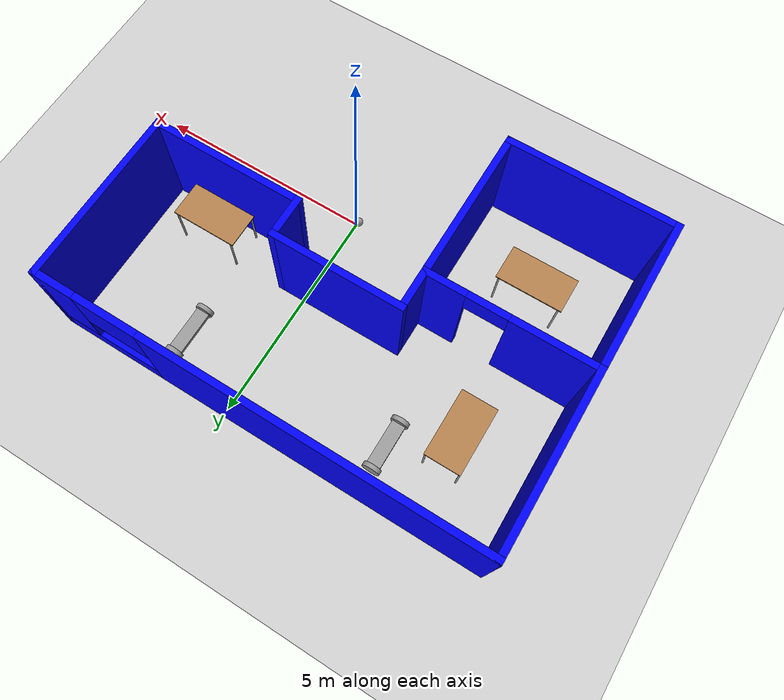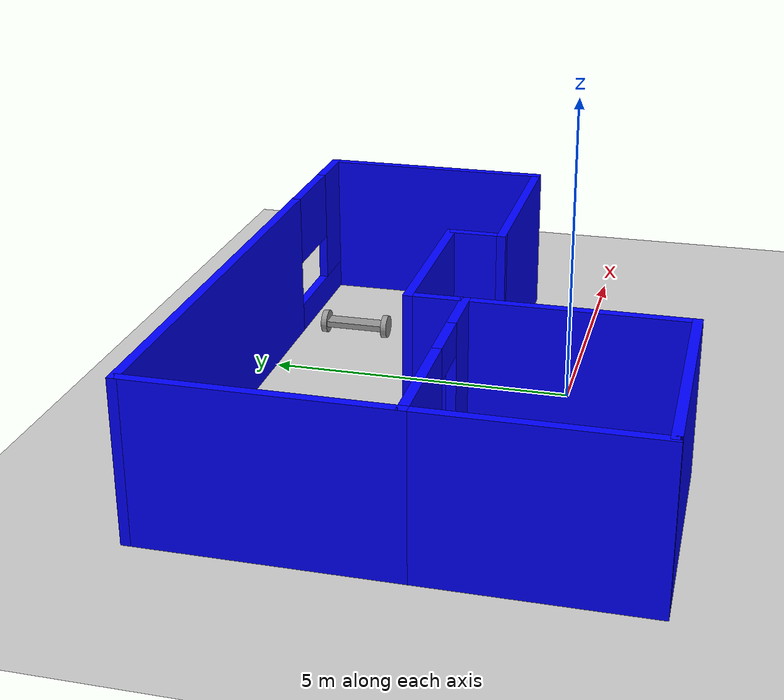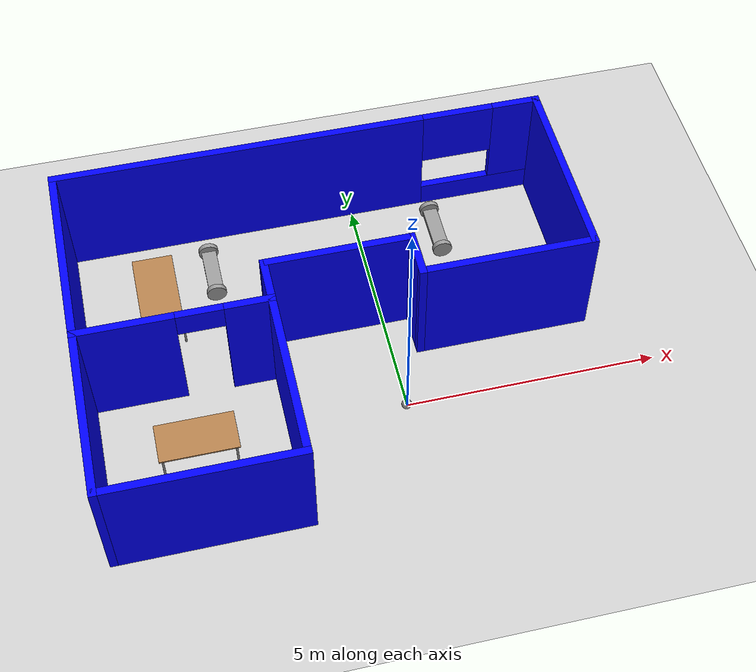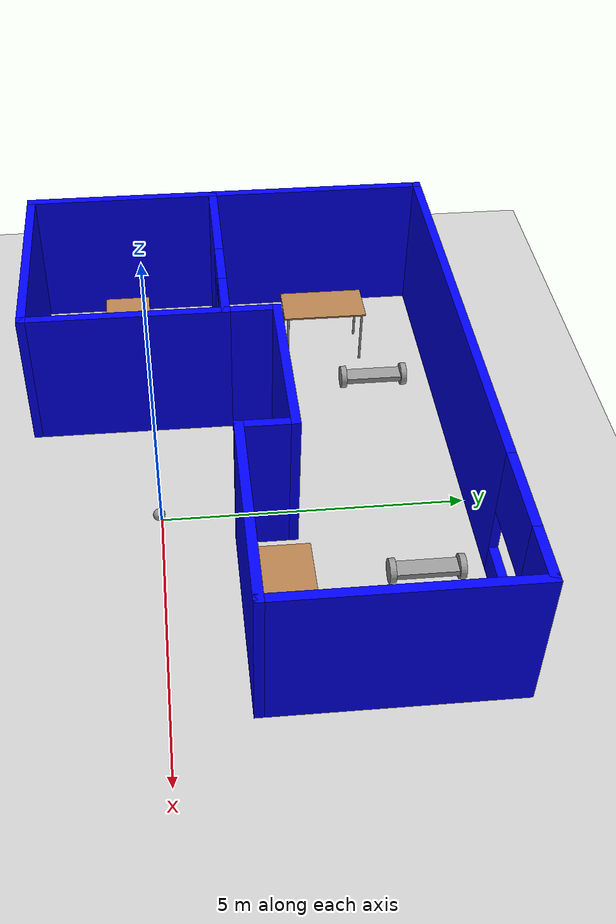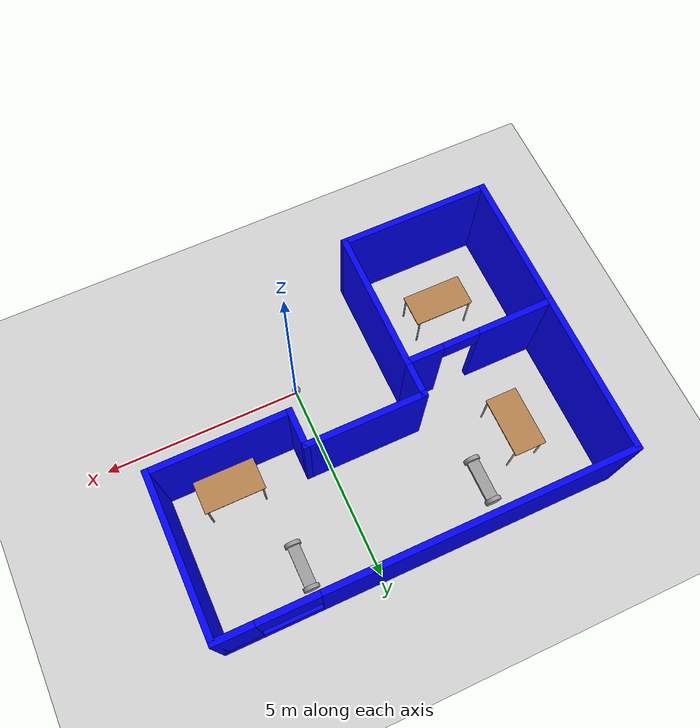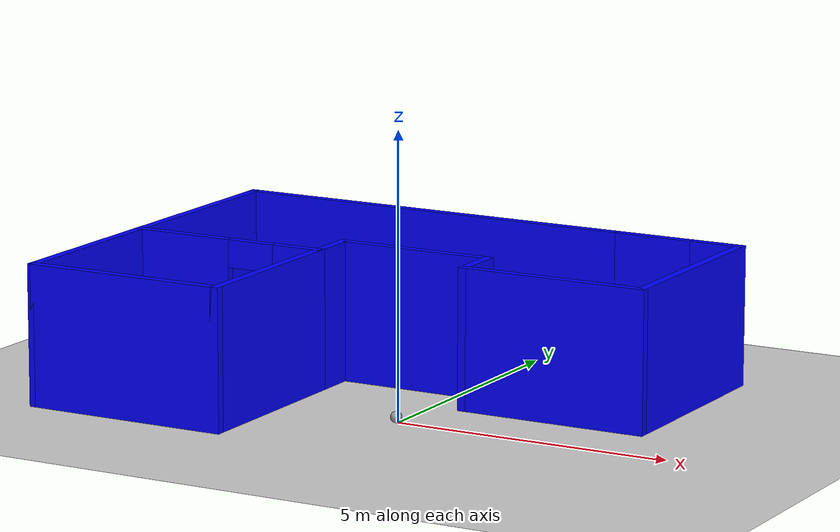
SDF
<sdf version="1.6">
 <world name="default">
  <plugin name="hello" filename="libhello.so"/>
  <light name="sun" type="directional">
   <pose>0 0 10 0 -0 0</pose>
   <diffuse>0.8 0.8 0.8 1</diffuse>
   <specular>0.2 0.2 0.2 1</specular>
   <attenuation>
    <range>1000</range>
    <constant>0.9</constant>
    <linear>0.01</linear>
    <quadratic>0.001</quadratic>
   </attenuation>
   <direction>-0.5 0.1 -0.9</direction>
  </light>
  <model name="ground_plane">
   <static>1</static>
   <link name="link">
    <collision name="collision">
     <geometry><plane><normal>0 0 1</normal><size>100 100</size></plane></geometry>
     <surface>
      <contact><collide_bitmask>65535</collide_bitmask></contact>
      <friction><ode><mu>100</mu><mu2>50</mu2></ode></friction>
     </surface>
    </collision>
    <visual name="visual">
     <cast_shadows>0</cast_shadows>
     <geometry><plane><normal>0 0 1</normal><size>100 100</size></plane></geometry>
     <material>
      <script><uri>file://media/materials/scripts/gazebo.material</uri><name>Gazebo/Grey</name></script>
     </material>
    </visual>
   </link>
  </model>
  <gravity>0 0 -9.8</gravity>
  <magnetic_field>6e-06 2.3e-05 -4.2e-05</magnetic_field>
  <atmosphere type="adiabatic"/>
  <physics name="default_physics" default="0" type="ode">
   <max_step_size>0.001</max_step_size>
   <real_time_factor>1</real_time_factor>
   <real_time_update_rate>1000</real_time_update_rate>
  </physics>
  <scene><ambient>0.4 0.4 0.4 1</ambient><background>0.7 0.7 0.7 1</background><shadows>1</shadows></scene>
  <spherical_coordinates>
   <surface_model>EARTH_WGS84</surface_model>
   <latitude_deg>0</latitude_deg>
   <longitude_deg>0</longitude_deg>
   <elevation>0</elevation>
   <heading_deg>0</heading_deg>
  </spherical_coordinates>
  <model name="model">
   <pose>-1.015 1.5 0 0 -0 0</pose>
   <link name="Wall_15">
    <collision name="Wall_15_Collision">
     <geometry><box><size>4 0.15 2.5</size></box></geometry>
     <pose>0 0 1.25 0 -0 0</pose>
    </collision>
    <visual name="Wall_15_Visual">
     <pose>0 0 1.25 0 -0 0</pose>
     <geometry><box><size>4 0.15 2.5</size></box></geometry>
     <material>
      <script><uri>file://media/materials/scripts/gazebo.material</uri><name>Gazebo/Grey</name></script>
      <ambient>0 0 1 1</ambient>
     </material>
     <meta><layer>0</layer></meta>
    </visual>
    <pose>-4.925 1.675 0 0 0 -1.5708</pose>
   </link>
   <link name="Wall_16">
    <pose>-3.1 -0.25 0 0 -0 0</pose>
    <visual name="Wall_16_Visual_0">
     <pose>-0.93552 0 1.25 0 -0 0</pose>
     <geometry><box><size>1.92896 0.15 2.5</size></box></geometry>
     <material>
      <script><uri>file://media/materials/scripts/gazebo.material</uri><name>Gazebo/Grey</name></script>
      <ambient>0 0 1 1</ambient>
     </material>
     <meta><layer>0</layer></meta>
    </visual>
    <collision name="Wall_16_Collision_0">
     <geometry><box><size>1.92896 0.15 2.5</size></box></geometry>
     <pose>-0.93552 0 1.25 0 -0 0</pose>
    </collision>
    <visual name="Wall_16_Visual_1">
     <pose>1.41448 0 1.25 0 -0 0</pose>
     <geometry><box><size>0.971041 0.15 2.5</size></box></geometry>
     <material>
      <script><uri>file://media/materials/scripts/gazebo.material</uri><name>Gazebo/Grey</name></script>
      <ambient>0 0 1 1</ambient>
     </material>
     <meta><layer>0</layer></meta>
    </visual>
    <collision name="Wall_16_Collision_1">
     <geometry><box><size>0.971041 0.15 2.5</size></box></geometry>
     <pose>1.41448 0 1.25 0 -0 0</pose>
    </collision>
    <visual name="Wall_16_Visual_2">
     <pose>0.478959 0 2.25 0 -0 0</pose>
     <geometry><box><size>0.9 0.15 0.5</size></box></geometry>
     <material>
      <script><uri>file://media/materials/scripts/gazebo.material</uri><name>Gazebo/Grey</name></script>
      <ambient>0 0 1 1</ambient>
     </material>
     <meta><layer>0</layer></meta>
    </visual>
    <collision name="Wall_16_Collision_2">
     <geometry><box><size>0.9 0.15 0.5</size></box></geometry>
     <pose>0.478959 0 2.25 0 -0 0</pose>
    </collision>
   </link>
   <link name="Wall_19">
    <collision name="Wall_19_Collision">
     <geometry><box><size>3.5 0.15 2.5</size></box></geometry>
     <pose>0 0 1.25 0 -0 0</pose>
    </collision>
    <visual name="Wall_19_Visual">
     <pose>0 0 1.25 0 -0 0</pose>
     <geometry><box><size>3.5 0.15 2.5</size></box></geometry>
     <material>
      <script><uri>file://media/materials/scripts/gazebo.material</uri><name>Gazebo/Grey</name></script>
      <ambient>0 0 1 1</ambient>
     </material>
     <meta><layer>0</layer></meta>
    </visual>
    <pose>-4.925 -1.925 0 0 0 -1.5708</pose>
   </link>
   <link name="Wall_2">
    <pose>0 3.6 0 0 -0 0</pose>
    <visual name="Wall_2_Visual_0">
     <pose>-1.22752 0 1.25 0 -0 0</pose>
     <geometry><box><size>7.54496 0.15 2.5</size></box></geometry>
     <material>
      <script><uri>file://media/materials/scripts/gazebo.material</uri><name>Gazebo/Grey</name></script>
      <ambient>0 0 1 1</ambient>
     </material>
     <meta><layer>0</layer></meta>
    </visual>
    <collision name="Wall_2_Collision_0">
     <geometry><box><size>7.54496 0.15 2.5</size></box></geometry>
     <pose>-1.22752 0 1.25 0 -0 0</pose>
    </collision>
    <visual name="Wall_2_Visual_1">
     <pose>3.77248 0 0.25 0 -0 0</pose>
     <geometry><box><size>2.45504 0.15 0.5</size></box></geometry>
     <material>
      <script><uri>file://media/materials/scripts/gazebo.material</uri><name>Gazebo/Grey</name></script>
      <ambient>0 0 1 1</ambient>
     </material>
     <meta><layer>0</layer></meta>
    </visual>
    <collision name="Wall_2_Collision_1">
     <geometry><box><size>2.45504 0.15 0.5</size></box></geometry>
     <pose>3.77248 0 0.25 0 -0 0</pose>
    </collision>
    <visual name="Wall_2_Visual_2">
     <pose>4.50023 0 1.5 0 -0 0</pose>
     <geometry><box><size>0.999541 0.15 2</size></box></geometry>
     <material>
      <script><uri>file://media/materials/scripts/gazebo.material</uri><name>Gazebo/Grey</name></script>
      <ambient>0 0 1 1</ambient>
     </material>
     <meta><layer>0</layer></meta>
    </visual>
    <collision name="Wall_2_Collision_2">
     <geometry><box><size>0.999541 0.15 2</size></box></geometry>
     <pose>4.50023 0 1.5 0 -0 0</pose>
    </collision>
    <visual name="Wall_2_Visual_3">
     <pose>3.27271 0 1.9 0 -0 0</pose>
     <geometry><box><size>1.4555 0.15 1.2</size></box></geometry>
     <material>
      <script><uri>file://media/materials/scripts/gazebo.material</uri><name>Gazebo/Grey</name></script>
      <ambient>0 0 1 1</ambient>
     </material>
     <meta><layer>0</layer></meta>
    </visual>
    <collision name="Wall_2_Collision_3">
     <geometry><box><size>1.4555 0.15 1.2</size></box></geometry>
     <pose>3.27271 0 1.9 0 -0 0</pose>
    </collision>
   </link>
   <link name="Wall_21">
    <collision name="Wall_21_Collision">
     <geometry><box><size>3.5 0.15 2.5</size></box></geometry>
     <pose>0 0 1.25 0 -0 0</pose>
    </collision>
    <visual name="Wall_21_Visual">
     <pose>0 0 1.25 0 -0 0</pose>
     <geometry><box><size>3.5 0.15 2.5</size></box></geometry>
     <material>
      <script><uri>file://media/materials/scripts/gazebo.material</uri><name>Gazebo/Grey</name></script>
      <ambient>0 0 1 1</ambient>
     </material>
     <meta><layer>0</layer></meta>
    </visual>
    <pose>-1.275 -1.925 0 0 0 -1.5708</pose>
   </link>
   <link name="Wall_22">
    <collision name="Wall_22_Collision">
     <geometry><box><size>3.75 0.15 2.5</size></box></geometry>
     <pose>0 0 1.25 0 -0 0</pose>
    </collision>
    <visual name="Wall_22_Visual">
     <pose>0 0 1.25 0 -0 0</pose>
     <geometry><box><size>3.75 0.15 2.5</size></box></geometry>
     <material>
      <script><uri>file://media/materials/scripts/gazebo.material</uri><name>Gazebo/Grey</name></script>
      <ambient>0 0 1 1</ambient>
     </material>
     <meta><layer>0</layer></meta>
    </visual>
    <pose>-3.075 -3.6 0 0 -0 3.14159</pose>
   </link>
   <link name="Wall_3">
    <collision name="Wall_3_Collision">
     <geometry><box><size>4 0.15 2.5</size></box></geometry>
     <pose>0 0 1.25 0 -0 0</pose>
    </collision>
    <visual name="Wall_3_Visual">
     <pose>0 0 1.25 0 -0 0</pose>
     <geometry><box><size>4 0.15 2.5</size></box></geometry>
     <material>
      <script><uri>file://media/materials/scripts/gazebo.material</uri><name>Gazebo/Grey</name></script>
      <ambient>0 0 1 1</ambient>
     </material>
     <meta><layer>0</layer></meta>
    </visual>
    <pose>4.925 1.675 0 0 0 -1.5708</pose>
   </link>
   <link name="Wall_4">
    <collision name="Wall_4_Collision">
     <geometry><box><size>3.5 0.15 2.5</size></box></geometry>
     <pose>0 0 1.25 0 -0 0</pose>
    </collision>
    <visual name="Wall_4_Visual">
     <pose>0 0 1.25 0 -0 0</pose>
     <geometry><box><size>3.5 0.15 2.5</size></box></geometry>
     <material>
      <script><uri>file://media/materials/scripts/gazebo.material</uri><name>Gazebo/Grey</name></script>
      <ambient>0 0 1 1</ambient>
     </material>
     <meta><layer>0</layer></meta>
    </visual>
    <pose>3.25 -0.25 0 0 -0 3.14159</pose>
   </link>
   <link name="Wall_5">
    <collision name="Wall_5_Collision">
     <geometry><box><size>1 0.15 2.5</size></box></geometry>
     <pose>0 0 1.25 0 -0 0</pose>
    </collision>
    <visual name="Wall_5_Visual">
     <pose>0 0 1.25 0 -0 0</pose>
     <geometry><box><size>1 0.15 2.5</size></box></geometry>
     <material>
      <script><uri>file://media/materials/scripts/gazebo.material</uri><name>Gazebo/Grey</name></script>
      <ambient>0 0 1 1</ambient>
     </material>
     <meta><layer>0</layer></meta>
    </visual>
    <pose>1.575 0.175 0 0 -0 1.5708</pose>
   </link>
   <link name="Wall_6">
    <collision name="Wall_6_Collision">
     <geometry><box><size>3 0.15 2.5</size></box></geometry>
     <pose>0 0 1.25 0 -0 0</pose>
    </collision>
    <visual name="Wall_6_Visual">
     <pose>0 0 1.25 0 -0 0</pose>
     <geometry><box><size>3 0.15 2.5</size></box></geometry>
     <material>
      <script><uri>file://media/materials/scripts/gazebo.material</uri><name>Gazebo/Grey</name></script>
      <ambient>0 0 1 1</ambient>
     </material>
     <meta><layer>0</layer></meta>
    </visual>
    <pose>0.15 0.6 0 0 -0 3.14159</pose>
   </link>
   <link name="Wall_7">
    <collision name="Wall_7_Collision">
     <geometry><box><size>1 0.15 2.5</size></box></geometry>
     <pose>0 0 1.25 0 -0 0</pose>
    </collision>
    <visual name="Wall_7_Visual">
     <pose>0 0 1.25 0 -0 0</pose>
     <geometry><box><size>1 0.15 2.5</size></box></geometry>
     <material>
      <script><uri>file://media/materials/scripts/gazebo.material</uri><name>Gazebo/Grey</name></script>
      <ambient>0 0 1 1</ambient>
     </material>
     <meta><layer>0</layer></meta>
    </visual>
    <pose>-1.275 0.175 0 0 0 -1.5708</pose>
   </link>
   <static>1</static>
  </model>
  <model name="table">
   <static>1</static>
   <link name="link">
    <collision name="surface">
     <pose>0 0 1 0 -0 0</pose>
     <geometry><box><size>1.5 0.8 0.03</size></box></geometry>
     <surface><friction><ode><mu>0.6</mu><mu2>0.6</mu2></ode></friction></surface>
    </collision>
    <visual name="visual1">
     <pose>0 0 1 0 -0 0</pose>
     <geometry><box><size>1.5 0.8 0.03</size></box></geometry>
     <material>
      <script><uri>file://media/materials/scripts/gazebo.material</uri><name>Gazebo/Wood</name></script>
     </material>
    </visual>
    <collision name="front_left_leg">
     <pose>0.68 0.38 0.5 0 -0 0</pose>
     <geometry><cylinder><radius>0.02</radius><length>1</length></cylinder></geometry>
    </collision>
    <visual name="front_left_leg">
     <pose>0.68 0.38 0.5 0 -0 0</pose>
     <geometry><cylinder><radius>0.02</radius><length>1</length></cylinder></geometry>
     <material>
      <script><uri>file://media/materials/scripts/gazebo.material</uri><name>Gazebo/Grey</name></script>
     </material>
    </visual>
    <collision name="front_right_leg">
     <pose>0.68 -0.38 0.5 0 -0 0</pose>
     <geometry><cylinder><radius>0.02</radius><length>1</length></cylinder></geometry>
    </collision>
    <visual name="front_right_leg">
     <pose>0.68 -0.38 0.5 0 -0 0</pose>
     <geometry><cylinder><radius>0.02</radius><length>1</length></cylinder></geometry>
     <material>
      <script><uri>file://media/materials/scripts/gazebo.material</uri><name>Gazebo/Grey</name></script>
     </material>
    </visual>
    <collision name="back_right_leg">
     <pose>-0.68 -0.38 0.5 0 -0 0</pose>
     <geometry><cylinder><radius>0.02</radius><length>1</length></cylinder></geometry>
    </collision>
    <visual name="back_right_leg">
     <pose>-0.68 -0.38 0.5 0 -0 0</pose>
     <geometry><cylinder><radius>0.02</radius><length>1</length></cylinder></geometry>
     <material>
      <script><uri>file://media/materials/scripts/gazebo.material</uri><name>Gazebo/Grey</name></script>
     </material>
    </visual>
    <collision name="back_left_leg">
     <pose>-0.68 0.38 0.5 0 -0 0</pose>
     <geometry><cylinder><radius>0.02</radius><length>1</length></cylinder></geometry>
    </collision>
    <visual name="back_left_leg">
     <pose>-0.68 0.38 0.5 0 -0 0</pose>
     <geometry><cylinder><radius>0.02</radius><length>1</length></cylinder></geometry>
     <material>
      <script><uri>file://media/materials/scripts/gazebo.material</uri><name>Gazebo/Grey</name></script>
     </material>
    </visual>
   </link>
   <pose>-4.08579 -0.443202 0 0 -0 0</pose>
  </model>
  <model name="table_0">
   <static>1</static>
   <link name="link">
    <collision name="surface">
     <pose>0 0 1 0 -0 0</pose>
     <geometry><box><size>1.5 0.8 0.03</size></box></geometry>
     <surface><friction><ode><mu>0.6</mu><mu2>0.6</mu2></ode></friction></surface>
    </collision>
    <visual name="visual1">
     <pose>0 0 1 0 -0 0</pose>
     <geometry><box><size>1.5 0.8 0.03</size></box></geometry>
     <material>
      <script><uri>file://media/materials/scripts/gazebo.material</uri><name>Gazebo/Wood</name></script>
     </material>
    </visual>
    <collision name="front_left_leg">
     <pose>0.68 0.38 0.5 0 -0 0</pose>
     <geometry><cylinder><radius>0.02</radius><length>1</length></cylinder></geometry>
    </collision>
    <visual name="front_left_leg">
     <pose>0.68 0.38 0.5 0 -0 0</pose>
     <geometry><cylinder><radius>0.02</radius><length>1</length></cylinder></geometry>
     <material>
      <script><uri>file://media/materials/scripts/gazebo.material</uri><name>Gazebo/Grey</name></script>
     </material>
    </visual>
    <collision name="front_right_leg">
     <pose>0.68 -0.38 0.5 0 -0 0</pose>
     <geometry><cylinder><radius>0.02</radius><length>1</length></cylinder></geometry>
    </collision>
    <visual name="front_right_leg">
     <pose>0.68 -0.38 0.5 0 -0 0</pose>
     <geometry><cylinder><radius>0.02</radius><length>1</length></cylinder></geometry>
     <material>
      <script><uri>file://media/materials/scripts/gazebo.material</uri><name>Gazebo/Grey</name></script>
     </material>
    </visual>
    <collision name="back_right_leg">
     <pose>-0.68 -0.38 0.5 0 -0 0</pose>
     <geometry><cylinder><radius>0.02</radius><length>1</length></cylinder></geometry>
    </collision>
    <visual name="back_right_leg">
     <pose>-0.68 -0.38 0.5 0 -0 0</pose>
     <geometry><cylinder><radius>0.02</radius><length>1</length></cylinder></geometry>
     <material>
      <script><uri>file://media/materials/scripts/gazebo.material</uri><name>Gazebo/Grey</name></script>
     </material>
    </visual>
    <collision name="back_left_leg">
     <pose>-0.68 0.38 0.5 0 -0 0</pose>
     <geometry><cylinder><radius>0.02</radius><length>1</length></cylinder></geometry>
    </collision>
    <visual name="back_left_leg">
     <pose>-0.68 0.38 0.5 0 -0 0</pose>
     <geometry><cylinder><radius>0.02</radius><length>1</length></cylinder></geometry>
     <material>
      <script><uri>file://media/materials/scripts/gazebo.material</uri><name>Gazebo/Grey</name></script>
     </material>
    </visual>
   </link>
   <pose>2.4116 1.82507 0 0 -0 0</pose>
  </model>
  <model name="Basement">
   <link name="link">
    <pose>0 0.2 0 0 -0 1.5707</pose>
    <inertial>
     <mass>1</mass>
     <inertia><ixx>1</ixx><ixy>0</ixy><ixz>0</ixz><iyy>1</iyy><iyz>0</iyz><izz>1</izz></inertia>
    </inertial>
    <visual name="visual1">
     <pose>0 0 1 0 -0 0</pose>
     <geometry><box><size>1.5 0.8 0.03</size></box></geometry>
     <material>
      <script><uri>file://media/materials/scripts/gazebo.material</uri><name>Gazebo/Wood</name></script>
      <shader type="pixel"><normal_map>__default__</normal_map></shader>
      <ambient>1 1 1 1</ambient>
      <diffuse>1 1 1 1</diffuse>
      <specular>0.2 0.2 0.2 1</specular>
      <emissive>0 0 0 1</emissive>
     </material>
    </visual>
    <visual name="front_left_leg">
     <pose>0.68 0.38 0.5 0 -0 0</pose>
     <geometry><cylinder><radius>0.02</radius><length>1</length></cylinder></geometry>
     <material>
      <script><uri>file://media/materials/scripts/gazebo.material</uri><name>Gazebo/Grey</name></script>
      <shader type="pixel"><normal_map>__default__</normal_map></shader>
      <ambient>0.3 0.3 0.3 1</ambient>
      <diffuse>0.7 0.7 0.7 1</diffuse>
      <specular>0.01 0.01 0.01 1</specular>
      <emissive>0 0 0 1</emissive>
     </material>
    </visual>
    <visual name="front_right_leg">
     <pose>0.68 -0.38 0.5 0 -0 0</pose>
     <geometry><cylinder><radius>0.02</radius><length>1</length></cylinder></geometry>
     <material>
      <script><uri>file://media/materials/scripts/gazebo.material</uri><name>Gazebo/Grey</name></script>
      <shader type="pixel"><normal_map>__default__</normal_map></shader>
      <ambient>0.3 0.3 0.3 1</ambient>
      <diffuse>0.7 0.7 0.7 1</diffuse>
      <specular>0.01 0.01 0.01 1</specular>
      <emissive>0 0 0 1</emissive>
     </material>
    </visual>
    <visual name="back_right_leg">
     <pose>-0.68 -0.38 0.5 0 -0 0</pose>
     <geometry><cylinder><radius>0.02</radius><length>1</length></cylinder></geometry>
     <material>
      <script><uri>file://media/materials/scripts/gazebo.material</uri><name>Gazebo/Grey</name></script>
      <shader type="pixel"><normal_map>__default__</normal_map></shader>
      <ambient>0.3 0.3 0.3 1</ambient>
      <diffuse>0.7 0.7 0.7 1</diffuse>
      <specular>0.01 0.01 0.01 1</specular>
      <emissive>0 0 0 1</emissive>
     </material>
    </visual>
    <visual name="back_left_leg">
     <pose>-0.68 0.38 0.5 0 -0 0</pose>
     <geometry><cylinder><radius>0.02</radius><length>1</length></cylinder></geometry>
     <material>
      <script><uri>file://media/materials/scripts/gazebo.material</uri><name>Gazebo/Grey</name></script>
      <shader type="pixel"><normal_map>__default__</normal_map></shader>
      <ambient>0.3 0.3 0.3 1</ambient>
      <diffuse>0.7 0.7 0.7 1</diffuse>
      <specular>0.01 0.01 0.01 1</specular>
      <emissive>0 0 0 1</emissive>
     </material>
    </visual>
    <collision name="surface">
     <pose>0 0 1 0 -0 0</pose>
     <geometry><box><size>1.5 0.8 0.03</size></box></geometry>
     <surface>
      <friction>
       <ode><mu>0.6</mu><mu2>0.6</mu2><fdir1>0 0 0</fdir1><slip1>0</slip1><slip2>0</slip2></ode>
       <torsional>
        <coefficient>1</coefficient>
        <patch_radius>0</patch_radius>
        <surface_radius>0</surface_radius>
        <use_patch_radius>1</use_patch_radius>
        <ode><slip>0</slip></ode>
       </torsional>
      </friction>
      <bounce><restitution_coefficient>0</restitution_coefficient><threshold>1e+06</threshold></bounce>
      <contact>
       <collide_without_contact>0</collide_without_contact>
       <collide_without_contact_bitmask>1</collide_without_contact_bitmask>
       <collide_bitmask>1</collide_bitmask>
       <ode>
        <soft_cfm>0</soft_cfm>
        <soft_erp>0.2</soft_erp>
        <kp>1e+13</kp>
        <kd>1</kd>
        <max_vel>0.01</max_vel>
        <min_depth>0</min_depth>
       </ode>
       <bullet>
        <split_impulse>1</split_impulse>
        <split_impulse_penetration_threshold>-0.01</split_impulse_penetration_threshold>
        <soft_cfm>0</soft_cfm>
        <soft_erp>0.2</soft_erp>
        <kp>1e+13</kp>
        <kd>1</kd>
       </bullet>
      </contact>
     </surface>
    </collision>
    <collision name="front_left_leg">
     <pose>0.68 0.38 0.5 0 -0 0</pose>
     <geometry><cylinder><radius>0.02</radius><length>1</length></cylinder></geometry>
     <surface>
      <friction>
       <ode><mu>1</mu><mu2>1</mu2><fdir1>0 0 0</fdir1><slip1>0</slip1><slip2>0</slip2></ode>
       <torsional>
        <coefficient>1</coefficient>
        <patch_radius>0</patch_radius>
        <surface_radius>0</surface_radius>
        <use_patch_radius>1</use_patch_radius>
        <ode><slip>0</slip></ode>
       </torsional>
      </friction>
      <bounce><restitution_coefficient>0</restitution_coefficient><threshold>1e+06</threshold></bounce>
      <contact>
       <collide_without_contact>0</collide_without_contact>
       <collide_without_contact_bitmask>1</collide_without_contact_bitmask>
       <collide_bitmask>1</collide_bitmask>
       <ode>
        <soft_cfm>0</soft_cfm>
        <soft_erp>0.2</soft_erp>
        <kp>1e+13</kp>
        <kd>1</kd>
        <max_vel>0.01</max_vel>
        <min_depth>0</min_depth>
       </ode>
       <bullet>
        <split_impulse>1</split_impulse>
        <split_impulse_penetration_threshold>-0.01</split_impulse_penetration_threshold>
        <soft_cfm>0</soft_cfm>
        <soft_erp>0.2</soft_erp>
        <kp>1e+13</kp>
        <kd>1</kd>
       </bullet>
      </contact>
     </surface>
    </collision>
    <collision name="front_right_leg">
     <pose>0.68 -0.38 0.5 0 -0 0</pose>
     <geometry><cylinder><radius>0.02</radius><length>1</length></cylinder></geometry>
     <surface>
      <friction>
       <ode><mu>1</mu><mu2>1</mu2><fdir1>0 0 0</fdir1><slip1>0</slip1><slip2>0</slip2></ode>
       <torsional>
        <coefficient>1</coefficient>
        <patch_radius>0</patch_radius>
        <surface_radius>0</surface_radius>
        <use_patch_radius>1</use_patch_radius>
        <ode><slip>0</slip></ode>
       </torsional>
      </friction>
      <bounce><restitution_coefficient>0</restitution_coefficient><threshold>1e+06</threshold></bounce>
      <contact>
       <collide_without_contact>0</collide_without_contact>
       <collide_without_contact_bitmask>1</collide_without_contact_bitmask>
       <collide_bitmask>1</collide_bitmask>
       <ode>
        <soft_cfm>0</soft_cfm>
        <soft_erp>0.2</soft_erp>
        <kp>1e+13</kp>
        <kd>1</kd>
        <max_vel>0.01</max_vel>
        <min_depth>0</min_depth>
       </ode>
       <bullet>
        <split_impulse>1</split_impulse>
        <split_impulse_penetration_threshold>-0.01</split_impulse_penetration_threshold>
        <soft_cfm>0</soft_cfm>
        <soft_erp>0.2</soft_erp>
        <kp>1e+13</kp>
        <kd>1</kd>
       </bullet>
      </contact>
     </surface>
    </collision>
    <collision name="back_right_leg">
     <pose>-0.68 -0.38 0.5 0 -0 0</pose>
     <geometry><cylinder><radius>0.02</radius><length>1</length></cylinder></geometry>
     <surface>
      <friction>
       <ode><mu>1</mu><mu2>1</mu2><fdir1>0 0 0</fdir1><slip1>0</slip1><slip2>0</slip2></ode>
       <torsional>
        <coefficient>1</coefficient>
        <patch_radius>0</patch_radius>
        <surface_radius>0</surface_radius>
        <use_patch_radius>1</use_patch_radius>
        <ode><slip>0</slip></ode>
       </torsional>
      </friction>
      <bounce><restitution_coefficient>0</restitution_coefficient><threshold>1e+06</threshold></bounce>
      <contact>
       <collide_without_contact>0</collide_without_contact>
       <collide_without_contact_bitmask>1</collide_without_contact_bitmask>
       <collide_bitmask>1</collide_bitmask>
       <ode>
        <soft_cfm>0</soft_cfm>
        <soft_erp>0.2</soft_erp>
        <kp>1e+13</kp>
        <kd>1</kd>
        <max_vel>0.01</max_vel>
        <min_depth>0</min_depth>
       </ode>
       <bullet>
        <split_impulse>1</split_impulse>
        <split_impulse_penetration_threshold>-0.01</split_impulse_penetration_threshold>
        <soft_cfm>0</soft_cfm>
        <soft_erp>0.2</soft_erp>
        <kp>1e+13</kp>
        <kd>1</kd>
       </bullet>
      </contact>
     </surface>
    </collision>
    <collision name="back_left_leg">
     <pose>-0.68 0.38 0.5 0 -0 0</pose>
     <geometry><cylinder><radius>0.02</radius><length>1</length></cylinder></geometry>
     <surface>
      <friction>
       <ode><mu>1</mu><mu2>1</mu2><fdir1>0 0 0</fdir1><slip1>0</slip1><slip2>0</slip2></ode>
       <torsional>
        <coefficient>1</coefficient>
        <patch_radius>0</patch_radius>
        <surface_radius>0</surface_radius>
        <use_patch_radius>1</use_patch_radius>
        <ode><slip>0</slip></ode>
       </torsional>
      </friction>
      <bounce><restitution_coefficient>0</restitution_coefficient><threshold>1e+06</threshold></bounce>
      <contact>
       <collide_without_contact>0</collide_without_contact>
       <collide_without_contact_bitmask>1</collide_without_contact_bitmask>
       <collide_bitmask>1</collide_bitmask>
       <ode>
        <soft_cfm>0</soft_cfm>
        <soft_erp>0.2</soft_erp>
        <kp>1e+13</kp>
        <kd>1</kd>
        <max_vel>0.01</max_vel>
        <min_depth>0</min_depth>
       </ode>
       <bullet>
        <split_impulse>1</split_impulse>
        <split_impulse_penetration_threshold>-0.01</split_impulse_penetration_threshold>
        <soft_cfm>0</soft_cfm>
        <soft_erp>0.2</soft_erp>
        <kp>1e+13</kp>
        <kd>1</kd>
       </bullet>
      </contact>
     </surface>
    </collision>
   </link>
   <static>1</static>
   <pose>-4.32606 2.96801 0 0 -0 0</pose>
  </model>
  <model name="twowheeler_0">
   <link name="link_2">
    <inertial>
     <mass>1</mass>
     <inertia>
      <ixx>0.166667</ixx>
      <ixy>0</ixy>
      <ixz>0</ixz>
      <iyy>0.166667</iyy>
      <iyz>0</iyz>
      <izz>0.166667</izz>
     </inertia>
    </inertial>
    <visual name="visual">
     <geometry><box><size>0.3 1 0.1</size></box></geometry>
     <material>
      <lighting>1</lighting>
      <script><uri>file://media/materials/scripts/gazebo.material</uri><name>Gazebo/Grey</name></script>
      <shader type="pixel"><normal_map>__default__</normal_map></shader>
      <ambient>0.3 0.3 0.3 1</ambient>
      <diffuse>0.7 0.7 0.7 1</diffuse>
      <specular>0.01 0.01 0.01 1</specular>
      <emissive>0 0 0 1</emissive>
     </material>
    </visual>
    <collision name="collision">
     <geometry><box><size>0.3 1 0.1</size></box></geometry>
     <surface>
      <friction>
       <ode><mu>1</mu><mu2>1</mu2><fdir1>0 0 0</fdir1><slip1>0</slip1><slip2>0</slip2></ode>
       <torsional>
        <coefficient>1</coefficient>
        <patch_radius>0</patch_radius>
        <surface_radius>0</surface_radius>
        <use_patch_radius>1</use_patch_radius>
        <ode><slip>0</slip></ode>
       </torsional>
      </friction>
      <bounce><restitution_coefficient>0</restitution_coefficient><threshold>1e+06</threshold></bounce>
      <contact>
       <collide_without_contact>0</collide_without_contact>
       <collide_without_contact_bitmask>1</collide_without_contact_bitmask>
       <collide_bitmask>1</collide_bitmask>
       <ode>
        <soft_cfm>0</soft_cfm>
        <soft_erp>0.2</soft_erp>
        <kp>1e+13</kp>
        <kd>1</kd>
        <max_vel>0.01</max_vel>
        <min_depth>0</min_depth>
       </ode>
       <bullet>
        <split_impulse>1</split_impulse>
        <split_impulse_penetration_threshold>-0.01</split_impulse_penetration_threshold>
        <soft_cfm>0</soft_cfm>
        <soft_erp>0.2</soft_erp>
        <kp>1e+13</kp>
        <kd>1</kd>
       </bullet>
      </contact>
     </surface>
    </collision>
   </link>
   <link name="link_3">
    <pose>0 -0.550019 0 1.5707 -0 0</pose>
    <inertial>
     <mass>1</mass>
     <inertia><ixx>0.145833</ixx><ixy>0</ixy><ixz>0</ixz><iyy>0.145833</iyy><iyz>0</iyz><izz>0.125</izz></inertia>
    </inertial>
    <visual name="visual">
     <geometry><cylinder><radius>0.2</radius><length>0.1</length></cylinder></geometry>
     <material>
      <lighting>1</lighting>
      <script><uri>file://media/materials/scripts/gazebo.material</uri><name>Gazebo/Grey</name></script>
      <shader type="pixel"><normal_map>__default__</normal_map></shader>
      <ambient>0.3 0.3 0.3 1</ambient>
      <diffuse>0.7 0.7 0.7 1</diffuse>
      <specular>0.01 0.01 0.01 1</specular>
      <emissive>0 0 0 1</emissive>
     </material>
    </visual>
    <collision name="collision">
     <geometry><cylinder><radius>0.2</radius><length>0.1</length></cylinder></geometry>
     <surface>
      <friction>
       <ode><mu>1</mu><mu2>1</mu2><fdir1>0 0 0</fdir1><slip1>0</slip1><slip2>0</slip2></ode>
       <torsional>
        <coefficient>1</coefficient>
        <patch_radius>0</patch_radius>
        <surface_radius>0</surface_radius>
        <use_patch_radius>1</use_patch_radius>
        <ode><slip>0</slip></ode>
       </torsional>
      </friction>
      <bounce><restitution_coefficient>0</restitution_coefficient><threshold>1e+06</threshold></bounce>
      <contact>
       <collide_without_contact>0</collide_without_contact>
       <collide_without_contact_bitmask>1</collide_without_contact_bitmask>
       <collide_bitmask>1</collide_bitmask>
       <ode>
        <soft_cfm>0</soft_cfm>
        <soft_erp>0.2</soft_erp>
        <kp>1e+13</kp>
        <kd>1</kd>
        <max_vel>0.01</max_vel>
        <min_depth>0</min_depth>
       </ode>
       <bullet>
        <split_impulse>1</split_impulse>
        <split_impulse_penetration_threshold>-0.01</split_impulse_penetration_threshold>
        <soft_cfm>0</soft_cfm>
        <soft_erp>0.2</soft_erp>
        <kp>1e+13</kp>
        <kd>1</kd>
       </bullet>
      </contact>
     </surface>
    </collision>
   </link>
   <link name="link_3_clone">
    <pose>0 0.550019 0 1.5707 -0 0</pose>
    <inertial>
     <mass>1</mass>
     <inertia><ixx>0.145833</ixx><ixy>0</ixy><ixz>0</ixz><iyy>0.145833</iyy><iyz>0</iyz><izz>0.125</izz></inertia>
    </inertial>
    <visual name="visual">
     <geometry><cylinder><radius>0.2</radius><length>0.1</length></cylinder></geometry>
     <material>
      <lighting>1</lighting>
      <script><uri>file://media/materials/scripts/gazebo.material</uri><name>Gazebo/Grey</name></script>
      <shader type="pixel"><normal_map>__default__</normal_map></shader>
      <ambient>0.3 0.3 0.3 1</ambient>
      <diffuse>0.7 0.7 0.7 1</diffuse>
      <specular>0.01 0.01 0.01 1</specular>
      <emissive>0 0 0 1</emissive>
     </material>
    </visual>
    <collision name="collision">
     <geometry><cylinder><radius>0.2</radius><length>0.1</length></cylinder></geometry>
     <surface>
      <friction>
       <ode><mu>1</mu><mu2>1</mu2><fdir1>0 0 0</fdir1><slip1>0</slip1><slip2>0</slip2></ode>
       <torsional>
        <coefficient>1</coefficient>
        <patch_radius>0</patch_radius>
        <surface_radius>0</surface_radius>
        <use_patch_radius>1</use_patch_radius>
        <ode><slip>0</slip></ode>
       </torsional>
      </friction>
      <bounce><restitution_coefficient>0</restitution_coefficient><threshold>1e+06</threshold></bounce>
      <contact>
       <collide_without_contact>0</collide_without_contact>
       <collide_without_contact_bitmask>1</collide_without_contact_bitmask>
       <collide_bitmask>1</collide_bitmask>
       <ode>
        <soft_cfm>0</soft_cfm>
        <soft_erp>0.2</soft_erp>
        <kp>1e+13</kp>
        <kd>1</kd>
        <max_vel>0.01</max_vel>
        <min_depth>0</min_depth>
       </ode>
       <bullet>
        <split_impulse>1</split_impulse>
        <split_impulse_penetration_threshold>-0.01</split_impulse_penetration_threshold>
        <soft_cfm>0</soft_cfm>
        <soft_erp>0.2</soft_erp>
        <kp>1e+13</kp>
        <kd>1</kd>
       </bullet>
      </contact>
     </surface>
    </collision>
   </link>
   <joint name="link_2_JOINT_0" type="revolute">
    <parent>link_2</parent>
    <child>link_3</child>
    <axis>
     <xyz>1 0 0</xyz>
     <use_parent_model_frame>0</use_parent_model_frame>
     <limit>
      <lower>-1.79769e+308</lower>
      <upper>1.79769e+308</upper>
      <effort>-1</effort>
      <velocity>-1</velocity>
     </limit>
     <dynamics>
      <spring_reference>0</spring_reference>
      <spring_stiffness>0</spring_stiffness>
      <damping>0</damping>
     </dynamics>
    </axis>
    <physics>
     <ode><limit><cfm>0</cfm><erp>0.2</erp></limit><suspension><cfm>0</cfm><erp>0.2</erp></suspension></ode>
    </physics>
   </joint>
   <joint name="link_2_JOINT_1" type="revolute">
    <parent>link_2</parent>
    <child>link_3_clone</child>
    <axis>
     <xyz>1 0 0</xyz>
     <use_parent_model_frame>0</use_parent_model_frame>
     <limit>
      <lower>-1.79769e+308</lower>
      <upper>1.79769e+308</upper>
      <effort>-1</effort>
      <velocity>-1</velocity>
     </limit>
     <dynamics>
      <spring_reference>0</spring_reference>
      <spring_stiffness>0</spring_stiffness>
      <damping>0</damping>
     </dynamics>
    </axis>
    <physics>
     <ode><limit><cfm>0</cfm><erp>0.2</erp></limit><suspension><cfm>0</cfm><erp>0.2</erp></suspension></ode>
    </physics>
   </joint>
   <static>0</static>
   <pose>-3.16014 3.97508 0.199996 8e-06 -0 0</pose>
  </model>
  <model name="twowheeler_1">
   <link name="link_2">
    <inertial>
     <mass>1</mass>
     <inertia>
      <ixx>0.166667</ixx>
      <ixy>0</ixy>
      <ixz>0</ixz>
      <iyy>0.166667</iyy>
      <iyz>0</iyz>
      <izz>0.166667</izz>
     </inertia>
    </inertial>
    <visual name="visual">
     <geometry><box><size>0.3 1 0.1</size></box></geometry>
     <material>
      <lighting>1</lighting>
      <script><uri>file://media/materials/scripts/gazebo.material</uri><name>Gazebo/Grey</name></script>
      <shader type="pixel"><normal_map>__default__</normal_map></shader>
      <ambient>0.3 0.3 0.3 1</ambient>
      <diffuse>0.7 0.7 0.7 1</diffuse>
      <specular>0.01 0.01 0.01 1</specular>
      <emissive>0 0 0 1</emissive>
     </material>
    </visual>
    <collision name="collision">
     <geometry><box><size>0.3 1 0.1</size></box></geometry>
     <surface>
      <friction>
       <ode><mu>1</mu><mu2>1</mu2><fdir1>0 0 0</fdir1><slip1>0</slip1><slip2>0</slip2></ode>
       <torsional>
        <coefficient>1</coefficient>
        <patch_radius>0</patch_radius>
        <surface_radius>0</surface_radius>
        <use_patch_radius>1</use_patch_radius>
        <ode><slip>0</slip></ode>
       </torsional>
      </friction>
      <bounce><restitution_coefficient>0</restitution_coefficient><threshold>1e+06</threshold></bounce>
      <contact>
       <collide_without_contact>0</collide_without_contact>
       <collide_without_contact_bitmask>1</collide_without_contact_bitmask>
       <collide_bitmask>1</collide_bitmask>
       <ode>
        <soft_cfm>0</soft_cfm>
        <soft_erp>0.2</soft_erp>
        <kp>1e+13</kp>
        <kd>1</kd>
        <max_vel>0.01</max_vel>
        <min_depth>0</min_depth>
       </ode>
       <bullet>
        <split_impulse>1</split_impulse>
        <split_impulse_penetration_threshold>-0.01</split_impulse_penetration_threshold>
        <soft_cfm>0</soft_cfm>
        <soft_erp>0.2</soft_erp>
        <kp>1e+13</kp>
        <kd>1</kd>
       </bullet>
      </contact>
     </surface>
    </collision>
   </link>
   <link name="link_3">
    <pose>0 -0.550019 0 1.5707 -0 0</pose>
    <inertial>
     <mass>1</mass>
     <inertia><ixx>0.145833</ixx><ixy>0</ixy><ixz>0</ixz><iyy>0.145833</iyy><iyz>0</iyz><izz>0.125</izz></inertia>
    </inertial>
    <visual name="visual">
     <geometry><cylinder><radius>0.2</radius><length>0.1</length></cylinder></geometry>
     <material>
      <lighting>1</lighting>
      <script><uri>file://media/materials/scripts/gazebo.material</uri><name>Gazebo/Grey</name></script>
      <shader type="pixel"><normal_map>__default__</normal_map></shader>
      <ambient>0.3 0.3 0.3 1</ambient>
      <diffuse>0.7 0.7 0.7 1</diffuse>
      <specular>0.01 0.01 0.01 1</specular>
      <emissive>0 0 0 1</emissive>
     </material>
    </visual>
    <collision name="collision">
     <geometry><cylinder><radius>0.2</radius><length>0.1</length></cylinder></geometry>
     <surface>
      <friction>
       <ode><mu>1</mu><mu2>1</mu2><fdir1>0 0 0</fdir1><slip1>0</slip1><slip2>0</slip2></ode>
       <torsional>
        <coefficient>1</coefficient>
        <patch_radius>0</patch_radius>
        <surface_radius>0</surface_radius>
        <use_patch_radius>1</use_patch_radius>
        <ode><slip>0</slip></ode>
       </torsional>
      </friction>
      <bounce><restitution_coefficient>0</restitution_coefficient><threshold>1e+06</threshold></bounce>
      <contact>
       <collide_without_contact>0</collide_without_contact>
       <collide_without_contact_bitmask>1</collide_without_contact_bitmask>
       <collide_bitmask>1</collide_bitmask>
       <ode>
        <soft_cfm>0</soft_cfm>
        <soft_erp>0.2</soft_erp>
        <kp>1e+13</kp>
        <kd>1</kd>
        <max_vel>0.01</max_vel>
        <min_depth>0</min_depth>
       </ode>
       <bullet>
        <split_impulse>1</split_impulse>
        <split_impulse_penetration_threshold>-0.01</split_impulse_penetration_threshold>
        <soft_cfm>0</soft_cfm>
        <soft_erp>0.2</soft_erp>
        <kp>1e+13</kp>
        <kd>1</kd>
       </bullet>
      </contact>
     </surface>
    </collision>
   </link>
   <link name="link_3_clone">
    <pose>0 0.550019 0 1.5707 -0 0</pose>
    <inertial>
     <mass>1</mass>
     <inertia><ixx>0.145833</ixx><ixy>0</ixy><ixz>0</ixz><iyy>0.145833</iyy><iyz>0</iyz><izz>0.125</izz></inertia>
    </inertial>
    <visual name="visual">
     <geometry><cylinder><radius>0.2</radius><length>0.1</length></cylinder></geometry>
     <material>
      <lighting>1</lighting>
      <script><uri>file://media/materials/scripts/gazebo.material</uri><name>Gazebo/Grey</name></script>
      <shader type="pixel"><normal_map>__default__</normal_map></shader>
      <ambient>0.3 0.3 0.3 1</ambient>
      <diffuse>0.7 0.7 0.7 1</diffuse>
      <specular>0.01 0.01 0.01 1</specular>
      <emissive>0 0 0 1</emissive>
     </material>
    </visual>
    <collision name="collision">
     <geometry><cylinder><radius>0.2</radius><length>0.1</length></cylinder></geometry>
     <surface>
      <friction>
       <ode><mu>1</mu><mu2>1</mu2><fdir1>0 0 0</fdir1><slip1>0</slip1><slip2>0</slip2></ode>
       <torsional>
        <coefficient>1</coefficient>
        <patch_radius>0</patch_radius>
        <surface_radius>0</surface_radius>
        <use_patch_radius>1</use_patch_radius>
        <ode><slip>0</slip></ode>
       </torsional>
      </friction>
      <bounce><restitution_coefficient>0</restitution_coefficient><threshold>1e+06</threshold></bounce>
      <contact>
       <collide_without_contact>0</collide_without_contact>
       <collide_without_contact_bitmask>1</collide_without_contact_bitmask>
       <collide_bitmask>1</collide_bitmask>
       <ode>
        <soft_cfm>0</soft_cfm>
        <soft_erp>0.2</soft_erp>
        <kp>1e+13</kp>
        <kd>1</kd>
        <max_vel>0.01</max_vel>
        <min_depth>0</min_depth>
       </ode>
       <bullet>
        <split_impulse>1</split_impulse>
        <split_impulse_penetration_threshold>-0.01</split_impulse_penetration_threshold>
        <soft_cfm>0</soft_cfm>
        <soft_erp>0.2</soft_erp>
        <kp>1e+13</kp>
        <kd>1</kd>
       </bullet>
      </contact>
     </surface>
    </collision>
   </link>
   <joint name="link_2_JOINT_0" type="revolute">
    <parent>link_2</parent>
    <child>link_3</child>
    <axis>
     <xyz>1 0 0</xyz>
     <use_parent_model_frame>0</use_parent_model_frame>
     <limit>
      <lower>-1.79769e+308</lower>
      <upper>1.79769e+308</upper>
      <effort>-1</effort>
      <velocity>-1</velocity>
     </limit>
     <dynamics>
      <spring_reference>0</spring_reference>
      <spring_stiffness>0</spring_stiffness>
      <damping>0</damping>
     </dynamics>
    </axis>
    <physics>
     <ode><limit><cfm>0</cfm><erp>0.2</erp></limit><suspension><cfm>0</cfm><erp>0.2</erp></suspension></ode>
    </physics>
   </joint>
   <joint name="link_2_JOINT_1" type="revolute">
    <parent>link_2</parent>
    <child>link_3_clone</child>
    <axis>
     <xyz>1 0 0</xyz>
     <use_parent_model_frame>0</use_parent_model_frame>
     <limit>
      <lower>-1.79769e+308</lower>
      <upper>1.79769e+308</upper>
      <effort>-1</effort>
      <velocity>-1</velocity>
     </limit>
     <dynamics>
      <spring_reference>0</spring_reference>
      <spring_stiffness>0</spring_stiffness>
      <damping>0</damping>
     </dynamics>
    </axis>
    <physics>
     <ode><limit><cfm>0</cfm><erp>0.2</erp></limit><suspension><cfm>0</cfm><erp>0.2</erp></suspension></ode>
    </physics>
   </joint>
   <static>0</static>
   <pose>1.60686 4.06861 0.199996 8e-06 -0 0</pose>
  </model>
  <model name="my_ball">
   <link name="link_0">
    <inertial>
     <mass>1</mass>
     <inertia><ixx>0.1</ixx><ixy>0</ixy><ixz>0</ixz><iyy>0.1</iyy><iyz>0</iyz><izz>0.1</izz></inertia>
    </inertial>
    <visual name="visual">
     <geometry><sphere><radius>0.1</radius></sphere></geometry>
     <material>
      <lighting>1</lighting>
      <script><uri>file://media/materials/scripts/gazebo.material</uri><name>Gazebo/Grey</name></script>
      <shader type="pixel"><normal_map>__default__</normal_map></shader>
      <ambient>1 1 1 1</ambient>
      <diffuse>1 1 1 1</diffuse>
      <specular>1 1 1 1</specular>
      <emissive>1 1 1 1</emissive>
     </material>
    </visual>
    <collision name="collision">
     <geometry><sphere><radius>0.1</radius></sphere></geometry>
     <surface>
      <friction>
       <ode><mu>1</mu><mu2>1</mu2><fdir1>0 0 0</fdir1><slip1>0</slip1><slip2>0</slip2></ode>
       <torsional>
        <coefficient>1</coefficient>
        <patch_radius>0</patch_radius>
        <surface_radius>0</surface_radius>
        <use_patch_radius>1</use_patch_radius>
        <ode><slip>0</slip></ode>
       </torsional>
      </friction>
      <bounce><restitution_coefficient>0</restitution_coefficient><threshold>1e+06</threshold></bounce>
      <contact>
       <collide_without_contact>0</collide_without_contact>
       <collide_without_contact_bitmask>1</collide_without_contact_bitmask>
       <collide_bitmask>1</collide_bitmask>
       <ode>
        <soft_cfm>0</soft_cfm>
        <soft_erp>0.2</soft_erp>
        <kp>1e+13</kp>
        <kd>1</kd>
        <max_vel>0.01</max_vel>
        <min_depth>0</min_depth>
       </ode>
       <bullet>
        <split_impulse>1</split_impulse>
        <split_impulse_penetration_threshold>-0.01</split_impulse_penetration_threshold>
        <soft_cfm>0</soft_cfm>
        <soft_erp>0.2</soft_erp>
        <kp>1e+13</kp>
        <kd>1</kd>
       </bullet>
      </contact>
     </surface>
    </collision>
   </link>
   <static>0</static>
   <pose>-0.025149 -0.037452 0.1 0 -0 0</pose>
  </model>
 </world>
</sdf>
